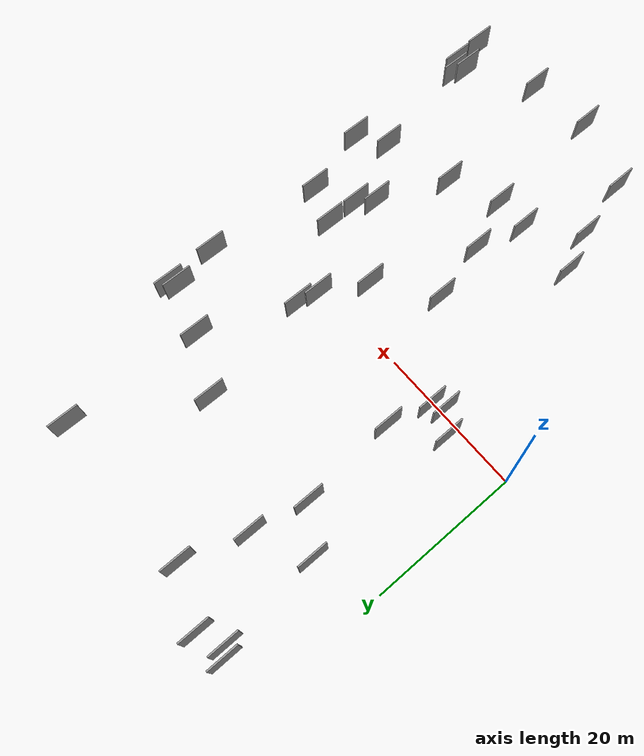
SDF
<sdf version="1.6">
 <world name="default">
  <scene>
   <sky><clouds><speed>12</speed></clouds></sky>
   <ambient>0.4 0.4 0.4 1</ambient>
   <background>0.7 0.7 0.7 1</background>
   <shadows>1</shadows>
  </scene>
  <gravity>0 0 -9.8066</gravity>
  <magnetic_field>6e-06 2.3e-05 -4.2e-05</magnetic_field>
  <physics default="0" name="default_physics" type="ode">
   <ode>
    <solver>
     <type>quick</type>
     <iters>10</iters>
     <sor>1.0</sor>
     <use_dynamic_moi_rescaling>0</use_dynamic_moi_rescaling>
    </solver>
    <constraints>
     <cfm>0</cfm>
     <erp>0.2</erp>
     <contact_max_correcting_vel>100</contact_max_correcting_vel>
     <contact_surface_layer>0.001</contact_surface_layer>
    </constraints>
   </ode>
   <max_step_size>0.004</max_step_size>
   <real_time_factor>1</real_time_factor>
   <real_time_update_rate>250</real_time_update_rate>
  </physics>
  <light name="sun" type="directional">
   <pose>0 0 10 0 0 0</pose>
   <diffuse>0.8 0.8 0.8 1</diffuse>
   <specular>0.2 0.2 0.2 1</specular>
   <attenuation>
    <range>1000</range>
    <constant>0.9</constant>
    <linear>0.01</linear>
    <quadratic>0.001</quadratic>
   </attenuation>
   <direction>-0.5 0.1 -0.9</direction>
  </light>
  <model name="grey_wall_1">
   <static>1</static>
   <pose>29.1804 20.7150 5.0 0.000000 0.000000 1.570796</pose>
   <link name="link">
    <pose>0 0 2.00 0 0 0</pose>
    <collision name="collision"><geometry><box><size>4.00 0.2 4.00</size></box></geometry></collision>
    <visual name="visual">
     <cast_shadows>0</cast_shadows>
     <geometry><box><size>4.00 0.2 4.00</size></box></geometry>
     <material>
      <script>
       <uri>model://grey_wall/materials/scripts</uri>
       <uri>model://grey_wall/materials/textures</uri>
       <name>vrc/grey_wall</name>
      </script>
     </material>
    </visual>
   </link>
  </model>
  <model name="grey_wall_2">
   <static>1</static>
   <pose>44.1626 -34.4590 5.0 0.000000 0.000000 1.570796</pose>
   <link name="link">
    <pose>0 0 2.00 0 0 0</pose>
    <collision name="collision"><geometry><box><size>4.00 0.2 4.00</size></box></geometry></collision>
    <visual name="visual">
     <cast_shadows>0</cast_shadows>
     <geometry><box><size>4.00 0.2 4.00</size></box></geometry>
     <material>
      <script>
       <uri>model://grey_wall/materials/scripts</uri>
       <uri>model://grey_wall/materials/textures</uri>
       <name>vrc/grey_wall</name>
      </script>
     </material>
    </visual>
   </link>
  </model>
  <model name="grey_wall_3">
   <static>1</static>
   <pose>12.3470 19.8052 5.0 0.000000 0.000000 1.570796</pose>
   <link name="link">
    <pose>0 0 2.00 0 0 0</pose>
    <collision name="collision"><geometry><box><size>4.00 0.2 4.00</size></box></geometry></collision>
    <visual name="visual">
     <cast_shadows>0</cast_shadows>
     <geometry><box><size>4.00 0.2 4.00</size></box></geometry>
     <material>
      <script>
       <uri>model://grey_wall/materials/scripts</uri>
       <uri>model://grey_wall/materials/textures</uri>
       <name>vrc/grey_wall</name>
      </script>
     </material>
    </visual>
   </link>
  </model>
  <model name="grey_wall_4">
   <static>1</static>
   <pose>31.8530 5.3549 5.0 0.000000 0.000000 1.570796</pose>
   <link name="link">
    <pose>0 0 2.00 0 0 0</pose>
    <collision name="collision"><geometry><box><size>4.00 0.2 4.00</size></box></geometry></collision>
    <visual name="visual">
     <cast_shadows>0</cast_shadows>
     <geometry><box><size>4.00 0.2 4.00</size></box></geometry>
     <material>
      <script>
       <uri>model://grey_wall/materials/scripts</uri>
       <uri>model://grey_wall/materials/textures</uri>
       <name>vrc/grey_wall</name>
      </script>
     </material>
    </visual>
   </link>
  </model>
  <model name="grey_wall_5">
   <static>1</static>
   <pose>9.3715 37.5616 5.0 0.000000 0.000000 1.570796</pose>
   <link name="link">
    <pose>0 0 2.00 0 0 0</pose>
    <collision name="collision"><geometry><box><size>4.00 0.2 4.00</size></box></geometry></collision>
    <visual name="visual">
     <cast_shadows>0</cast_shadows>
     <geometry><box><size>4.00 0.2 4.00</size></box></geometry>
     <material>
      <script>
       <uri>model://grey_wall/materials/scripts</uri>
       <uri>model://grey_wall/materials/textures</uri>
       <name>vrc/grey_wall</name>
      </script>
     </material>
    </visual>
   </link>
  </model>
  <model name="grey_wall_6">
   <static>1</static>
   <pose>45.6679 -15.7264 5.0 0.000000 0.000000 1.570796</pose>
   <link name="link">
    <pose>0 0 2.00 0 0 0</pose>
    <collision name="collision"><geometry><box><size>4.00 0.2 4.00</size></box></geometry></collision>
    <visual name="visual">
     <cast_shadows>0</cast_shadows>
     <geometry><box><size>4.00 0.2 4.00</size></box></geometry>
     <material>
      <script>
       <uri>model://grey_wall/materials/scripts</uri>
       <uri>model://grey_wall/materials/textures</uri>
       <name>vrc/grey_wall</name>
      </script>
     </material>
    </visual>
   </link>
  </model>
  <model name="grey_wall_7">
   <static>1</static>
   <pose>5.3124 36.9053 5.0 0.000000 0.000000 1.570796</pose>
   <link name="link">
    <pose>0 0 2.00 0 0 0</pose>
    <collision name="collision"><geometry><box><size>4.00 0.2 4.00</size></box></geometry></collision>
    <visual name="visual">
     <cast_shadows>0</cast_shadows>
     <geometry><box><size>4.00 0.2 4.00</size></box></geometry>
     <material>
      <script>
       <uri>model://grey_wall/materials/scripts</uri>
       <uri>model://grey_wall/materials/textures</uri>
       <name>vrc/grey_wall</name>
      </script>
     </material>
    </visual>
   </link>
  </model>
  <model name="grey_wall_8">
   <static>1</static>
   <pose>21.4274 -22.7478 5.0 0.000000 0.000000 1.570796</pose>
   <link name="link">
    <pose>0 0 2.00 0 0 0</pose>
    <collision name="collision"><geometry><box><size>4.00 0.2 4.00</size></box></geometry></collision>
    <visual name="visual">
     <cast_shadows>0</cast_shadows>
     <geometry><box><size>4.00 0.2 4.00</size></box></geometry>
     <material>
      <script>
       <uri>model://grey_wall/materials/scripts</uri>
       <uri>model://grey_wall/materials/textures</uri>
       <name>vrc/grey_wall</name>
      </script>
     </material>
    </visual>
   </link>
  </model>
  <model name="grey_wall_9">
   <static>1</static>
   <pose>16.4098 34.7605 5.0 0.000000 0.000000 1.570796</pose>
   <link name="link">
    <pose>0 0 2.00 0 0 0</pose>
    <collision name="collision"><geometry><box><size>4.00 0.2 4.00</size></box></geometry></collision>
    <visual name="visual">
     <cast_shadows>0</cast_shadows>
     <geometry><box><size>4.00 0.2 4.00</size></box></geometry>
     <material>
      <script>
       <uri>model://grey_wall/materials/scripts</uri>
       <uri>model://grey_wall/materials/textures</uri>
       <name>vrc/grey_wall</name>
      </script>
     </material>
    </visual>
   </link>
  </model>
  <model name="grey_wall_10">
   <static>1</static>
   <pose>44.8331 -32.8432 5.0 0.000000 0.000000 1.570796</pose>
   <link name="link">
    <pose>0 0 2.00 0 0 0</pose>
    <collision name="collision"><geometry><box><size>4.00 0.2 4.00</size></box></geometry></collision>
    <visual name="visual">
     <cast_shadows>0</cast_shadows>
     <geometry><box><size>4.00 0.2 4.00</size></box></geometry>
     <material>
      <script>
       <uri>model://grey_wall/materials/scripts</uri>
       <uri>model://grey_wall/materials/textures</uri>
       <name>vrc/grey_wall</name>
      </script>
     </material>
    </visual>
   </link>
  </model>
  <model name="grey_wall_11">
   <static>1</static>
   <pose>44.5225 8.9999 5.0 0.000000 0.000000 1.570796</pose>
   <link name="link">
    <pose>0 0 2.00 0 0 0</pose>
    <collision name="collision"><geometry><box><size>4.00 0.2 4.00</size></box></geometry></collision>
    <visual name="visual">
     <cast_shadows>0</cast_shadows>
     <geometry><box><size>4.00 0.2 4.00</size></box></geometry>
     <material>
      <script>
       <uri>model://grey_wall/materials/scripts</uri>
       <uri>model://grey_wall/materials/textures</uri>
       <name>vrc/grey_wall</name>
      </script>
     </material>
    </visual>
   </link>
  </model>
  <model name="grey_wall_12">
   <static>1</static>
   <pose>37.4543 35.0978 5.0 0.000000 0.000000 1.570796</pose>
   <link name="link">
    <pose>0 0 2.00 0 0 0</pose>
    <collision name="collision"><geometry><box><size>4.00 0.2 4.00</size></box></geometry></collision>
    <visual name="visual">
     <cast_shadows>0</cast_shadows>
     <geometry><box><size>4.00 0.2 4.00</size></box></geometry>
     <material>
      <script>
       <uri>model://grey_wall/materials/scripts</uri>
       <uri>model://grey_wall/materials/textures</uri>
       <name>vrc/grey_wall</name>
      </script>
     </material>
    </visual>
   </link>
  </model>
  <model name="grey_wall_13">
   <static>1</static>
   <pose>6.3578 36.0216 5.0 0.000000 0.000000 1.570796</pose>
   <link name="link">
    <pose>0 0 2.00 0 0 0</pose>
    <collision name="collision"><geometry><box><size>4.00 0.2 4.00</size></box></geometry></collision>
    <visual name="visual">
     <cast_shadows>0</cast_shadows>
     <geometry><box><size>4.00 0.2 4.00</size></box></geometry>
     <material>
      <script>
       <uri>model://grey_wall/materials/scripts</uri>
       <uri>model://grey_wall/materials/textures</uri>
       <name>vrc/grey_wall</name>
      </script>
     </material>
    </visual>
   </link>
  </model>
  <model name="grey_wall_14">
   <static>1</static>
   <pose>13.4109 -22.6222 5.0 0.000000 0.000000 1.570796</pose>
   <link name="link">
    <pose>0 0 2.00 0 0 0</pose>
    <collision name="collision"><geometry><box><size>4.00 0.2 4.00</size></box></geometry></collision>
    <visual name="visual">
     <cast_shadows>0</cast_shadows>
     <geometry><box><size>4.00 0.2 4.00</size></box></geometry>
     <material>
      <script>
       <uri>model://grey_wall/materials/scripts</uri>
       <uri>model://grey_wall/materials/textures</uri>
       <name>vrc/grey_wall</name>
      </script>
     </material>
    </visual>
   </link>
  </model>
  <model name="grey_wall_15">
   <static>1</static>
   <pose>7.7082 3.1260 5.0 0.000000 0.000000 1.570796</pose>
   <link name="link">
    <pose>0 0 2.00 0 0 0</pose>
    <collision name="collision"><geometry><box><size>4.00 0.2 4.00</size></box></geometry></collision>
    <visual name="visual">
     <cast_shadows>0</cast_shadows>
     <geometry><box><size>4.00 0.2 4.00</size></box></geometry>
     <material>
      <script>
       <uri>model://grey_wall/materials/scripts</uri>
       <uri>model://grey_wall/materials/textures</uri>
       <name>vrc/grey_wall</name>
      </script>
     </material>
    </visual>
   </link>
  </model>
  <model name="grey_wall_16">
   <static>1</static>
   <pose>13.9004 26.8375 5.0 0.000000 0.000000 1.570796</pose>
   <link name="link">
    <pose>0 0 2.00 0 0 0</pose>
    <collision name="collision"><geometry><box><size>4.00 0.2 4.00</size></box></geometry></collision>
    <visual name="visual">
     <cast_shadows>0</cast_shadows>
     <geometry><box><size>4.00 0.2 4.00</size></box></geometry>
     <material>
      <script>
       <uri>model://grey_wall/materials/scripts</uri>
       <uri>model://grey_wall/materials/textures</uri>
       <name>vrc/grey_wall</name>
      </script>
     </material>
    </visual>
   </link>
  </model>
  <model name="grey_wall_17">
   <static>1</static>
   <pose>7.2357 23.4575 5.0 0.000000 0.000000 1.570796</pose>
   <link name="link">
    <pose>0 0 2.00 0 0 0</pose>
    <collision name="collision"><geometry><box><size>4.00 0.2 4.00</size></box></geometry></collision>
    <visual name="visual">
     <cast_shadows>0</cast_shadows>
     <geometry><box><size>4.00 0.2 4.00</size></box></geometry>
     <material>
      <script>
       <uri>model://grey_wall/materials/scripts</uri>
       <uri>model://grey_wall/materials/textures</uri>
       <name>vrc/grey_wall</name>
      </script>
     </material>
    </visual>
   </link>
  </model>
  <model name="grey_wall_18">
   <static>1</static>
   <pose>27.1371 -39.9501 5.0 0.000000 0.000000 1.570796</pose>
   <link name="link">
    <pose>0 0 2.00 0 0 0</pose>
    <collision name="collision"><geometry><box><size>4.00 0.2 4.00</size></box></geometry></collision>
    <visual name="visual">
     <cast_shadows>0</cast_shadows>
     <geometry><box><size>4.00 0.2 4.00</size></box></geometry>
     <material>
      <script>
       <uri>model://grey_wall/materials/scripts</uri>
       <uri>model://grey_wall/materials/textures</uri>
       <name>vrc/grey_wall</name>
      </script>
     </material>
    </visual>
   </link>
  </model>
  <model name="grey_wall_19">
   <static>1</static>
   <pose>25.9257 -23.0241 5.0 0.000000 0.000000 1.570796</pose>
   <link name="link">
    <pose>0 0 2.00 0 0 0</pose>
    <collision name="collision"><geometry><box><size>4.00 0.2 4.00</size></box></geometry></collision>
    <visual name="visual">
     <cast_shadows>0</cast_shadows>
     <geometry><box><size>4.00 0.2 4.00</size></box></geometry>
     <material>
      <script>
       <uri>model://grey_wall/materials/scripts</uri>
       <uri>model://grey_wall/materials/textures</uri>
       <name>vrc/grey_wall</name>
      </script>
     </material>
    </visual>
   </link>
  </model>
  <model name="grey_wall_20">
   <static>1</static>
   <pose>28.2230 -3.0331 5.0 0.000000 0.000000 1.570796</pose>
   <link name="link">
    <pose>0 0 2.00 0 0 0</pose>
    <collision name="collision"><geometry><box><size>4.00 0.2 4.00</size></box></geometry></collision>
    <visual name="visual">
     <cast_shadows>0</cast_shadows>
     <geometry><box><size>4.00 0.2 4.00</size></box></geometry>
     <material>
      <script>
       <uri>model://grey_wall/materials/scripts</uri>
       <uri>model://grey_wall/materials/textures</uri>
       <name>vrc/grey_wall</name>
      </script>
     </material>
    </visual>
   </link>
  </model>
  <model name="grey_wall_21">
   <static>1</static>
   <pose>32.6101 -20.3721 5.0 0.000000 0.000000 1.570796</pose>
   <link name="link">
    <pose>0 0 2.00 0 0 0</pose>
    <collision name="collision"><geometry><box><size>4.00 0.2 4.00</size></box></geometry></collision>
    <visual name="visual">
     <cast_shadows>0</cast_shadows>
     <geometry><box><size>4.00 0.2 4.00</size></box></geometry>
     <material>
      <script>
       <uri>model://grey_wall/materials/scripts</uri>
       <uri>model://grey_wall/materials/textures</uri>
       <name>vrc/grey_wall</name>
      </script>
     </material>
    </visual>
   </link>
  </model>
  <model name="grey_wall_22">
   <static>1</static>
   <pose>43.3098 14.9686 5.0 0.000000 0.000000 1.570796</pose>
   <link name="link">
    <pose>0 0 2.00 0 0 0</pose>
    <collision name="collision"><geometry><box><size>4.00 0.2 4.00</size></box></geometry></collision>
    <visual name="visual">
     <cast_shadows>0</cast_shadows>
     <geometry><box><size>4.00 0.2 4.00</size></box></geometry>
     <material>
      <script>
       <uri>model://grey_wall/materials/scripts</uri>
       <uri>model://grey_wall/materials/textures</uri>
       <name>vrc/grey_wall</name>
      </script>
     </material>
    </visual>
   </link>
  </model>
  <model name="grey_wall_23">
   <static>1</static>
   <pose>43.0128 -6.5655 5.0 0.000000 0.000000 1.570796</pose>
   <link name="link">
    <pose>0 0 2.00 0 0 0</pose>
    <collision name="collision"><geometry><box><size>4.00 0.2 4.00</size></box></geometry></collision>
    <visual name="visual">
     <cast_shadows>0</cast_shadows>
     <geometry><box><size>4.00 0.2 4.00</size></box></geometry>
     <material>
      <script>
       <uri>model://grey_wall/materials/scripts</uri>
       <uri>model://grey_wall/materials/textures</uri>
       <name>vrc/grey_wall</name>
      </script>
     </material>
    </visual>
   </link>
  </model>
  <model name="grey_wall_24">
   <static>1</static>
   <pose>37.9990 -4.7960 5.0 0.000000 0.000000 1.570796</pose>
   <link name="link">
    <pose>0 0 2.00 0 0 0</pose>
    <collision name="collision"><geometry><box><size>4.00 0.2 4.00</size></box></geometry></collision>
    <visual name="visual">
     <cast_shadows>0</cast_shadows>
     <geometry><box><size>4.00 0.2 4.00</size></box></geometry>
     <material>
      <script>
       <uri>model://grey_wall/materials/scripts</uri>
       <uri>model://grey_wall/materials/textures</uri>
       <name>vrc/grey_wall</name>
      </script>
     </material>
    </visual>
   </link>
  </model>
  <model name="grey_wall_25">
   <static>1</static>
   <pose>35.7864 -39.2988 5.0 0.000000 0.000000 1.570796</pose>
   <link name="link">
    <pose>0 0 2.00 0 0 0</pose>
    <collision name="collision"><geometry><box><size>4.00 0.2 4.00</size></box></geometry></collision>
    <visual name="visual">
     <cast_shadows>0</cast_shadows>
     <geometry><box><size>4.00 0.2 4.00</size></box></geometry>
     <material>
      <script>
       <uri>model://grey_wall/materials/scripts</uri>
       <uri>model://grey_wall/materials/textures</uri>
       <name>vrc/grey_wall</name>
      </script>
     </material>
    </visual>
   </link>
  </model>
  <model name="grey_wall_26">
   <static>1</static>
   <pose>45.7862 -33.9953 5.0 0.000000 0.000000 1.570796</pose>
   <link name="link">
    <pose>0 0 2.00 0 0 0</pose>
    <collision name="collision"><geometry><box><size>4.00 0.2 4.00</size></box></geometry></collision>
    <visual name="visual">
     <cast_shadows>0</cast_shadows>
     <geometry><box><size>4.00 0.2 4.00</size></box></geometry>
     <material>
      <script>
       <uri>model://grey_wall/materials/scripts</uri>
       <uri>model://grey_wall/materials/textures</uri>
       <name>vrc/grey_wall</name>
      </script>
     </material>
    </visual>
   </link>
  </model>
  <model name="grey_wall_27">
   <static>1</static>
   <pose>10.2931 1.1357 5.0 0.000000 0.000000 1.570796</pose>
   <link name="link">
    <pose>0 0 2.00 0 0 0</pose>
    <collision name="collision"><geometry><box><size>4.00 0.2 4.00</size></box></geometry></collision>
    <visual name="visual">
     <cast_shadows>0</cast_shadows>
     <geometry><box><size>4.00 0.2 4.00</size></box></geometry>
     <material>
      <script>
       <uri>model://grey_wall/materials/scripts</uri>
       <uri>model://grey_wall/materials/textures</uri>
       <name>vrc/grey_wall</name>
      </script>
     </material>
    </visual>
   </link>
  </model>
  <model name="grey_wall_28">
   <static>1</static>
   <pose>36.4997 -11.2973 5.0 0.000000 0.000000 1.570796</pose>
   <link name="link">
    <pose>0 0 2.00 0 0 0</pose>
    <collision name="collision"><geometry><box><size>4.00 0.2 4.00</size></box></geometry></collision>
    <visual name="visual">
     <cast_shadows>0</cast_shadows>
     <geometry><box><size>4.00 0.2 4.00</size></box></geometry>
     <material>
      <script>
       <uri>model://grey_wall/materials/scripts</uri>
       <uri>model://grey_wall/materials/textures</uri>
       <name>vrc/grey_wall</name>
      </script>
     </material>
    </visual>
   </link>
  </model>
  <model name="grey_wall_29">
   <static>1</static>
   <pose>15.6143 -27.8350 5.0 0.000000 0.000000 1.570796</pose>
   <link name="link">
    <pose>0 0 2.00 0 0 0</pose>
    <collision name="collision"><geometry><box><size>4.00 0.2 4.00</size></box></geometry></collision>
    <visual name="visual">
     <cast_shadows>0</cast_shadows>
     <geometry><box><size>4.00 0.2 4.00</size></box></geometry>
     <material>
      <script>
       <uri>model://grey_wall/materials/scripts</uri>
       <uri>model://grey_wall/materials/textures</uri>
       <name>vrc/grey_wall</name>
      </script>
     </material>
    </visual>
   </link>
  </model>
  <model name="grey_wall_30">
   <static>1</static>
   <pose>41.9268 -18.1756 5.0 0.000000 0.000000 1.570796</pose>
   <link name="link">
    <pose>0 0 2.00 0 0 0</pose>
    <collision name="collision"><geometry><box><size>4.00 0.2 4.00</size></box></geometry></collision>
    <visual name="visual">
     <cast_shadows>0</cast_shadows>
     <geometry><box><size>4.00 0.2 4.00</size></box></geometry>
     <material>
      <script>
       <uri>model://grey_wall/materials/scripts</uri>
       <uri>model://grey_wall/materials/textures</uri>
       <name>vrc/grey_wall</name>
      </script>
     </material>
    </visual>
   </link>
  </model>
  <model name="grey_wall_31">
   <static>1</static>
   <pose>17.7011 -36.0080 5.0 0.000000 0.000000 1.570796</pose>
   <link name="link">
    <pose>0 0 2.00 0 0 0</pose>
    <collision name="collision"><geometry><box><size>4.00 0.2 4.00</size></box></geometry></collision>
    <visual name="visual">
     <cast_shadows>0</cast_shadows>
     <geometry><box><size>4.00 0.2 4.00</size></box></geometry>
     <material>
      <script>
       <uri>model://grey_wall/materials/scripts</uri>
       <uri>model://grey_wall/materials/textures</uri>
       <name>vrc/grey_wall</name>
      </script>
     </material>
    </visual>
   </link>
  </model>
  <model name="grey_wall_32">
   <static>1</static>
   <pose>11.7989 1.8948 5.0 0.000000 0.000000 1.570796</pose>
   <link name="link">
    <pose>0 0 2.00 0 0 0</pose>
    <collision name="collision"><geometry><box><size>4.00 0.2 4.00</size></box></geometry></collision>
    <visual name="visual">
     <cast_shadows>0</cast_shadows>
     <geometry><box><size>4.00 0.2 4.00</size></box></geometry>
     <material>
      <script>
       <uri>model://grey_wall/materials/scripts</uri>
       <uri>model://grey_wall/materials/textures</uri>
       <name>vrc/grey_wall</name>
      </script>
     </material>
    </visual>
   </link>
  </model>
  <model name="grey_wall_33">
   <static>1</static>
   <pose>13.2035 7.3622 5.0 0.000000 0.000000 1.570796</pose>
   <link name="link">
    <pose>0 0 2.00 0 0 0</pose>
    <collision name="collision"><geometry><box><size>4.00 0.2 4.00</size></box></geometry></collision>
    <visual name="visual">
     <cast_shadows>0</cast_shadows>
     <geometry><box><size>4.00 0.2 4.00</size></box></geometry>
     <material>
      <script>
       <uri>model://grey_wall/materials/scripts</uri>
       <uri>model://grey_wall/materials/textures</uri>
       <name>vrc/grey_wall</name>
      </script>
     </material>
    </visual>
   </link>
  </model>
  <model name="grey_wall_34">
   <static>1</static>
   <pose>37.9595 -9.0857 5.0 0.000000 0.000000 1.570796</pose>
   <link name="link">
    <pose>0 0 2.00 0 0 0</pose>
    <collision name="collision"><geometry><box><size>4.00 0.2 4.00</size></box></geometry></collision>
    <visual name="visual">
     <cast_shadows>0</cast_shadows>
     <geometry><box><size>4.00 0.2 4.00</size></box></geometry>
     <material>
      <script>
       <uri>model://grey_wall/materials/scripts</uri>
       <uri>model://grey_wall/materials/textures</uri>
       <name>vrc/grey_wall</name>
      </script>
     </material>
    </visual>
   </link>
  </model>
  <model name="grey_wall_35">
   <static>1</static>
   <pose>36.6637 17.2004 5.0 0.000000 0.000000 1.570796</pose>
   <link name="link">
    <pose>0 0 2.00 0 0 0</pose>
    <collision name="collision"><geometry><box><size>4.00 0.2 4.00</size></box></geometry></collision>
    <visual name="visual">
     <cast_shadows>0</cast_shadows>
     <geometry><box><size>4.00 0.2 4.00</size></box></geometry>
     <material>
      <script>
       <uri>model://grey_wall/materials/scripts</uri>
       <uri>model://grey_wall/materials/textures</uri>
       <name>vrc/grey_wall</name>
      </script>
     </material>
    </visual>
   </link>
  </model>
  <model name="grey_wall_36">
   <static>1</static>
   <pose>45.9890 -38.3761 5.0 0.000000 0.000000 1.570796</pose>
   <link name="link">
    <pose>0 0 2.00 0 0 0</pose>
    <collision name="collision"><geometry><box><size>4.00 0.2 4.00</size></box></geometry></collision>
    <visual name="visual">
     <cast_shadows>0</cast_shadows>
     <geometry><box><size>4.00 0.2 4.00</size></box></geometry>
     <material>
      <script>
       <uri>model://grey_wall/materials/scripts</uri>
       <uri>model://grey_wall/materials/textures</uri>
       <name>vrc/grey_wall</name>
      </script>
     </material>
    </visual>
   </link>
  </model>
  <model name="grey_wall_37">
   <static>1</static>
   <pose>31.3441 2.6331 5.0 0.000000 0.000000 1.570796</pose>
   <link name="link">
    <pose>0 0 2.00 0 0 0</pose>
    <collision name="collision"><geometry><box><size>4.00 0.2 4.00</size></box></geometry></collision>
    <visual name="visual">
     <cast_shadows>0</cast_shadows>
     <geometry><box><size>4.00 0.2 4.00</size></box></geometry>
     <material>
      <script>
       <uri>model://grey_wall/materials/scripts</uri>
       <uri>model://grey_wall/materials/textures</uri>
       <name>vrc/grey_wall</name>
      </script>
     </material>
    </visual>
   </link>
  </model>
  <model name="grey_wall_38">
   <static>1</static>
   <pose>44.1605 15.6272 5.0 0.000000 0.000000 1.570796</pose>
   <link name="link">
    <pose>0 0 2.00 0 0 0</pose>
    <collision name="collision"><geometry><box><size>4.00 0.2 4.00</size></box></geometry></collision>
    <visual name="visual">
     <cast_shadows>0</cast_shadows>
     <geometry><box><size>4.00 0.2 4.00</size></box></geometry>
     <material>
      <script>
       <uri>model://grey_wall/materials/scripts</uri>
       <uri>model://grey_wall/materials/textures</uri>
       <name>vrc/grey_wall</name>
      </script>
     </material>
    </visual>
   </link>
  </model>
  <model name="grey_wall_39">
   <static>1</static>
   <pose>23.1030 -16.2722 5.0 0.000000 0.000000 1.570796</pose>
   <link name="link">
    <pose>0 0 2.00 0 0 0</pose>
    <collision name="collision"><geometry><box><size>4.00 0.2 4.00</size></box></geometry></collision>
    <visual name="visual">
     <cast_shadows>0</cast_shadows>
     <geometry><box><size>4.00 0.2 4.00</size></box></geometry>
     <material>
      <script>
       <uri>model://grey_wall/materials/scripts</uri>
       <uri>model://grey_wall/materials/textures</uri>
       <name>vrc/grey_wall</name>
      </script>
     </material>
    </visual>
   </link>
  </model>
  <model name="grey_wall_40">
   <static>1</static>
   <pose>21.0925 -8.3049 5.0 0.000000 0.000000 1.570796</pose>
   <link name="link">
    <pose>0 0 2.00 0 0 0</pose>
    <collision name="collision"><geometry><box><size>4.00 0.2 4.00</size></box></geometry></collision>
    <visual name="visual">
     <cast_shadows>0</cast_shadows>
     <geometry><box><size>4.00 0.2 4.00</size></box></geometry>
     <material>
      <script>
       <uri>model://grey_wall/materials/scripts</uri>
       <uri>model://grey_wall/materials/textures</uri>
       <name>vrc/grey_wall</name>
      </script>
     </material>
    </visual>
   </link>
  </model>
 </world>
</sdf>
